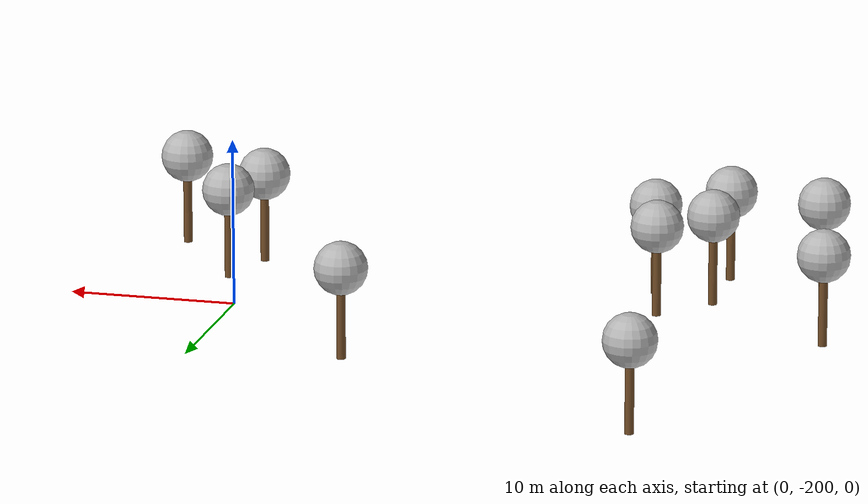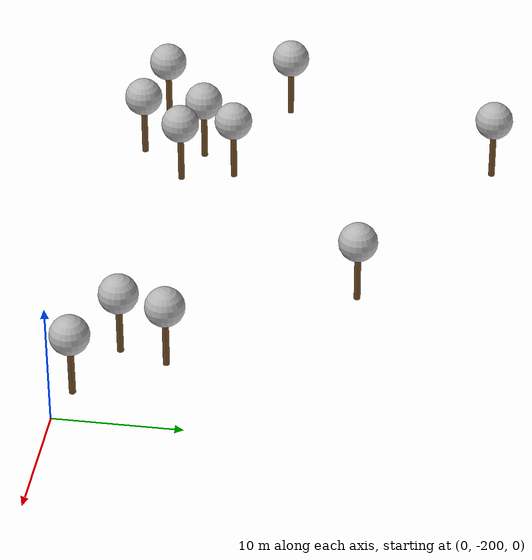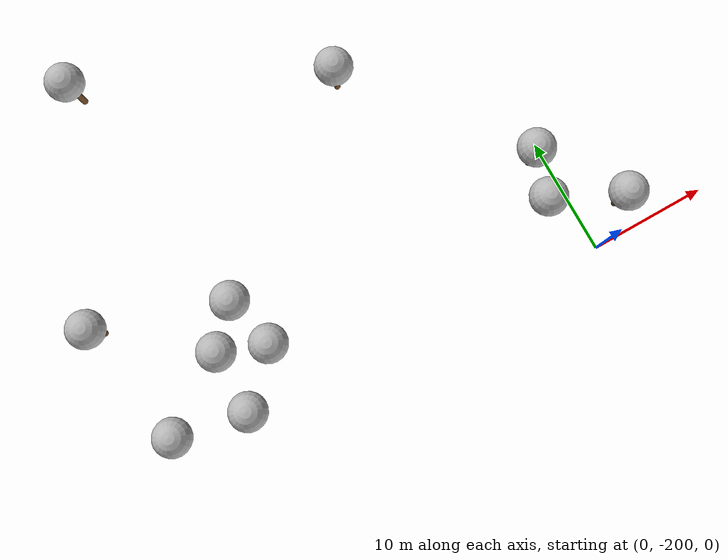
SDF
<sdf version="1.7">
 <world name="default">
  <model name="tree_simple_0_clone_1_clone">
   <static>1</static>
   <link name="link">
    <pose>0 0 0.1 0 -0 0</pose>
    <inertial>
     <mass>666</mass>
     <inertia>
      <ixx>0.0861167</ixx>
      <ixy>0</ixy>
      <ixz>0</ixz>
      <iyy>0.0861167</iyy>
      <iyz>0</iyz>
      <izz>0.0861167</izz>
     </inertia>
    </inertial>
    <collision name="collision_trunk">
     <pose>0 0 2 0 -0 0</pose>
     <geometry><cylinder><radius>0.25</radius><length>4</length></cylinder></geometry>
     <surface>
      <contact>
       <poissons_ratio>0.347</poissons_ratio>
       <elastic_modulus>8.8e+09</elastic_modulus>
       <ode><kp>100000</kp><kd>100</kd><max_vel>100</max_vel><min_depth>0.001</min_depth></ode>
      </contact>
      <friction>
       <torsional>
        <coefficient>1</coefficient>
        <use_patch_radius>0</use_patch_radius>
        <surface_radius>0.01</surface_radius>
       </torsional>
      </friction>
     </surface>
    </collision>
    <collision name="collision_treetop">
     <pose>0 0 5.2 0 -0 0</pose>
     <geometry><sphere><radius>1.5</radius></sphere></geometry>
     <surface>
      <contact>
       <poissons_ratio>0.347</poissons_ratio>
       <elastic_modulus>8.8e+09</elastic_modulus>
       <ode><kp>100000</kp><kd>100</kd><max_vel>100</max_vel><min_depth>0.001</min_depth></ode>
      </contact>
      <friction>
       <torsional>
        <coefficient>1</coefficient>
        <use_patch_radius>0</use_patch_radius>
        <surface_radius>0.01</surface_radius>
       </torsional>
      </friction>
     </surface>
    </collision>
    <visual name="trunk">
     <pose>0 0 2 0 -0 0</pose>
     <geometry><cylinder><radius>0.25</radius><length>4</length></cylinder></geometry>
     <material>
      <script>
       <uri>model://tree_simple/scripts</uri>
       <uri>model://tree_simple/materials/textures</uri>
       <name>TreeSimple/Trunk</name>
      </script>
     </material>
    </visual>
    <visual name="treetop">
     <pose>0 0 5.2 0 -0 0</pose>
     <geometry><sphere><radius>1.5</radius></sphere></geometry>
     <material>
      <script>
       <uri>model://tree_simple/scripts</uri>
       <uri>model://tree_simple/materials/textures</uri>
       <name>TreeSimple/Treetop</name>
      </script>
     </material>
    </visual>
   </link>
   <pose>-12.3952 -178.664 4.14033 0 -0 0</pose>
  </model>
  <model name="tree_simple_0_clone_1_clone_0">
   <static>1</static>
   <link name="link">
    <pose>0 0 0.1 0 -0 0</pose>
    <inertial>
     <mass>666</mass>
     <inertia>
      <ixx>0.0861167</ixx>
      <ixy>0</ixy>
      <ixz>0</ixz>
      <iyy>0.0861167</iyy>
      <iyz>0</iyz>
      <izz>0.0861167</izz>
     </inertia>
    </inertial>
    <collision name="collision_trunk">
     <pose>0 0 2 0 -0 0</pose>
     <geometry><cylinder><radius>0.25</radius><length>4</length></cylinder></geometry>
     <surface>
      <contact>
       <poissons_ratio>0.347</poissons_ratio>
       <elastic_modulus>8.8e+09</elastic_modulus>
       <ode><kp>100000</kp><kd>100</kd><max_vel>100</max_vel><min_depth>0.001</min_depth></ode>
      </contact>
      <friction>
       <torsional>
        <coefficient>1</coefficient>
        <use_patch_radius>0</use_patch_radius>
        <surface_radius>0.01</surface_radius>
       </torsional>
      </friction>
     </surface>
    </collision>
    <collision name="collision_treetop">
     <pose>0 0 5.2 0 -0 0</pose>
     <geometry><sphere><radius>1.5</radius></sphere></geometry>
     <surface>
      <contact>
       <poissons_ratio>0.347</poissons_ratio>
       <elastic_modulus>8.8e+09</elastic_modulus>
       <ode><kp>100000</kp><kd>100</kd><max_vel>100</max_vel><min_depth>0.001</min_depth></ode>
      </contact>
      <friction>
       <torsional>
        <coefficient>1</coefficient>
        <use_patch_radius>0</use_patch_radius>
        <surface_radius>0.01</surface_radius>
       </torsional>
      </friction>
     </surface>
    </collision>
    <visual name="trunk">
     <pose>0 0 2 0 -0 0</pose>
     <geometry><cylinder><radius>0.25</radius><length>4</length></cylinder></geometry>
     <material>
      <script>
       <uri>model://tree_simple/scripts</uri>
       <uri>model://tree_simple/materials/textures</uri>
       <name>TreeSimple/Trunk</name>
      </script>
     </material>
    </visual>
    <visual name="treetop">
     <pose>0 0 5.2 0 -0 0</pose>
     <geometry><sphere><radius>1.5</radius></sphere></geometry>
     <material>
      <script>
       <uri>model://tree_simple/scripts</uri>
       <uri>model://tree_simple/materials/textures</uri>
       <name>TreeSimple/Treetop</name>
      </script>
     </material>
    </visual>
   </link>
   <pose>-30.1583 -193.288 4.24809 0 -0 0</pose>
  </model>
  <model name="tree_simple_0_clone_1_clone_clone">
   <static>1</static>
   <link name="link">
    <pose>0 0 0.1 0 -0 0</pose>
    <inertial>
     <mass>666</mass>
     <inertia>
      <ixx>0.0861167</ixx>
      <ixy>0</ixy>
      <ixz>0</ixz>
      <iyy>0.0861167</iyy>
      <iyz>0</iyz>
      <izz>0.0861167</izz>
     </inertia>
    </inertial>
    <collision name="collision_trunk">
     <pose>0 0 2 0 -0 0</pose>
     <geometry><cylinder><radius>0.25</radius><length>4</length></cylinder></geometry>
     <surface>
      <contact>
       <poissons_ratio>0.347</poissons_ratio>
       <elastic_modulus>8.8e+09</elastic_modulus>
       <ode><kp>100000</kp><kd>100</kd><max_vel>100</max_vel><min_depth>0.001</min_depth></ode>
      </contact>
      <friction>
       <torsional>
        <coefficient>1</coefficient>
        <use_patch_radius>0</use_patch_radius>
        <surface_radius>0.01</surface_radius>
       </torsional>
      </friction>
     </surface>
    </collision>
    <collision name="collision_treetop">
     <pose>0 0 5.2 0 -0 0</pose>
     <geometry><sphere><radius>1.5</radius></sphere></geometry>
     <surface>
      <contact>
       <poissons_ratio>0.347</poissons_ratio>
       <elastic_modulus>8.8e+09</elastic_modulus>
       <ode><kp>100000</kp><kd>100</kd><max_vel>100</max_vel><min_depth>0.001</min_depth></ode>
      </contact>
      <friction>
       <torsional>
        <coefficient>1</coefficient>
        <use_patch_radius>0</use_patch_radius>
        <surface_radius>0.01</surface_radius>
       </torsional>
      </friction>
     </surface>
    </collision>
    <visual name="trunk">
     <pose>0 0 2 0 -0 0</pose>
     <geometry><cylinder><radius>0.25</radius><length>4</length></cylinder></geometry>
     <material>
      <script>
       <uri>model://tree_simple/scripts</uri>
       <uri>model://tree_simple/materials/textures</uri>
       <name>TreeSimple/Trunk</name>
      </script>
     </material>
    </visual>
    <visual name="treetop">
     <pose>0 0 5.2 0 -0 0</pose>
     <geometry><sphere><radius>1.5</radius></sphere></geometry>
     <material>
      <script>
       <uri>model://tree_simple/scripts</uri>
       <uri>model://tree_simple/materials/textures</uri>
       <name>TreeSimple/Treetop</name>
      </script>
     </material>
    </visual>
   </link>
   <pose>-30.6534 -169.847 4.14034 0 -0 0</pose>
  </model>
  <model name="tree_simple_0_clone_1_clone_0_clone">
   <static>1</static>
   <link name="link">
    <pose>0 0 0.1 0 -0 0</pose>
    <inertial>
     <mass>666</mass>
     <inertia>
      <ixx>0.0861167</ixx>
      <ixy>0</ixy>
      <ixz>0</ixz>
      <iyy>0.0861167</iyy>
      <iyz>0</iyz>
      <izz>0.0861167</izz>
     </inertia>
    </inertial>
    <collision name="collision_trunk">
     <pose>0 0 2 0 -0 0</pose>
     <geometry><cylinder><radius>0.25</radius><length>4</length></cylinder></geometry>
     <surface>
      <contact>
       <poissons_ratio>0.347</poissons_ratio>
       <elastic_modulus>8.8e+09</elastic_modulus>
       <ode><kp>100000</kp><kd>100</kd><max_vel>100</max_vel><min_depth>0.001</min_depth></ode>
      </contact>
      <friction>
       <torsional>
        <coefficient>1</coefficient>
        <use_patch_radius>0</use_patch_radius>
        <surface_radius>0.01</surface_radius>
       </torsional>
      </friction>
     </surface>
    </collision>
    <collision name="collision_treetop">
     <pose>0 0 5.2 0 -0 0</pose>
     <geometry><sphere><radius>1.5</radius></sphere></geometry>
     <surface>
      <contact>
       <poissons_ratio>0.347</poissons_ratio>
       <elastic_modulus>8.8e+09</elastic_modulus>
       <ode><kp>100000</kp><kd>100</kd><max_vel>100</max_vel><min_depth>0.001</min_depth></ode>
      </contact>
      <friction>
       <torsional>
        <coefficient>1</coefficient>
        <use_patch_radius>0</use_patch_radius>
        <surface_radius>0.01</surface_radius>
       </torsional>
      </friction>
     </surface>
    </collision>
    <visual name="trunk">
     <pose>0 0 2 0 -0 0</pose>
     <geometry><cylinder><radius>0.25</radius><length>4</length></cylinder></geometry>
     <material>
      <script>
       <uri>model://tree_simple/scripts</uri>
       <uri>model://tree_simple/materials/textures</uri>
       <name>TreeSimple/Trunk</name>
      </script>
     </material>
    </visual>
    <visual name="treetop">
     <pose>0 0 5.2 0 -0 0</pose>
     <geometry><sphere><radius>1.5</radius></sphere></geometry>
     <material>
      <script>
       <uri>model://tree_simple/scripts</uri>
       <uri>model://tree_simple/materials/textures</uri>
       <name>TreeSimple/Treetop</name>
      </script>
     </material>
    </visual>
   </link>
   <pose>-37.6725 -187.212 4.24809 0 -0 0</pose>
  </model>
  <model name="tree_simple_0_clone_1_clone_0_clone_1">
   <static>1</static>
   <link name="link">
    <pose>0 0 0.1 0 -0 0</pose>
    <inertial>
     <mass>666</mass>
     <inertia>
      <ixx>0.0861167</ixx>
      <ixy>0</ixy>
      <ixz>0</ixz>
      <iyy>0.0861167</iyy>
      <iyz>0</iyz>
      <izz>0.0861167</izz>
     </inertia>
    </inertial>
    <collision name="collision_trunk">
     <pose>0 0 2 0 -0 0</pose>
     <geometry><cylinder><radius>0.25</radius><length>4</length></cylinder></geometry>
     <surface>
      <contact>
       <poissons_ratio>0.347</poissons_ratio>
       <elastic_modulus>8.8e+09</elastic_modulus>
       <ode><kp>100000</kp><kd>100</kd><max_vel>100</max_vel><min_depth>0.001</min_depth></ode>
      </contact>
      <friction>
       <torsional>
        <coefficient>1</coefficient>
        <use_patch_radius>0</use_patch_radius>
        <surface_radius>0.01</surface_radius>
       </torsional>
      </friction>
     </surface>
    </collision>
    <collision name="collision_treetop">
     <pose>0 0 5.2 0 -0 0</pose>
     <geometry><sphere><radius>1.5</radius></sphere></geometry>
     <surface>
      <contact>
       <poissons_ratio>0.347</poissons_ratio>
       <elastic_modulus>8.8e+09</elastic_modulus>
       <ode><kp>100000</kp><kd>100</kd><max_vel>100</max_vel><min_depth>0.001</min_depth></ode>
      </contact>
      <friction>
       <torsional>
        <coefficient>1</coefficient>
        <use_patch_radius>0</use_patch_radius>
        <surface_radius>0.01</surface_radius>
       </torsional>
      </friction>
     </surface>
    </collision>
    <visual name="trunk">
     <pose>0 0 2 0 -0 0</pose>
     <geometry><cylinder><radius>0.25</radius><length>4</length></cylinder></geometry>
     <material>
      <script>
       <uri>model://tree_simple/scripts</uri>
       <uri>model://tree_simple/materials/textures</uri>
       <name>TreeSimple/Trunk</name>
      </script>
     </material>
    </visual>
    <visual name="treetop">
     <pose>0 0 5.2 0 -0 0</pose>
     <geometry><sphere><radius>1.5</radius></sphere></geometry>
     <material>
      <script>
       <uri>model://tree_simple/scripts</uri>
       <uri>model://tree_simple/materials/textures</uri>
       <name>TreeSimple/Treetop</name>
      </script>
     </material>
    </visual>
   </link>
   <pose>-35.7528 -197.175 4.24809 0 -0 0</pose>
  </model>
  <model name="tree_simple_0_clone_1_clone_0_clone_2">
   <static>1</static>
   <link name="link">
    <pose>0 0 0.1 0 -0 0</pose>
    <inertial>
     <mass>666</mass>
     <inertia>
      <ixx>0.0861167</ixx>
      <ixy>0</ixy>
      <ixz>0</ixz>
      <iyy>0.0861167</iyy>
      <iyz>0</iyz>
      <izz>0.0861167</izz>
     </inertia>
    </inertial>
    <collision name="collision_trunk">
     <pose>0 0 2 0 -0 0</pose>
     <geometry><cylinder><radius>0.25</radius><length>4</length></cylinder></geometry>
     <surface>
      <contact>
       <poissons_ratio>0.347</poissons_ratio>
       <elastic_modulus>8.8e+09</elastic_modulus>
       <ode><kp>100000</kp><kd>100</kd><max_vel>100</max_vel><min_depth>0.001</min_depth></ode>
      </contact>
      <friction>
       <torsional>
        <coefficient>1</coefficient>
        <use_patch_radius>0</use_patch_radius>
        <surface_radius>0.01</surface_radius>
       </torsional>
      </friction>
     </surface>
    </collision>
    <collision name="collision_treetop">
     <pose>0 0 5.2 0 -0 0</pose>
     <geometry><sphere><radius>1.5</radius></sphere></geometry>
     <surface>
      <contact>
       <poissons_ratio>0.347</poissons_ratio>
       <elastic_modulus>8.8e+09</elastic_modulus>
       <ode><kp>100000</kp><kd>100</kd><max_vel>100</max_vel><min_depth>0.001</min_depth></ode>
      </contact>
      <friction>
       <torsional>
        <coefficient>1</coefficient>
        <use_patch_radius>0</use_patch_radius>
        <surface_radius>0.01</surface_radius>
       </torsional>
      </friction>
     </surface>
    </collision>
    <visual name="trunk">
     <pose>0 0 2 0 -0 0</pose>
     <geometry><cylinder><radius>0.25</radius><length>4</length></cylinder></geometry>
     <material>
      <script>
       <uri>model://tree_simple/scripts</uri>
       <uri>model://tree_simple/materials/textures</uri>
       <name>TreeSimple/Trunk</name>
      </script>
     </material>
    </visual>
    <visual name="treetop">
     <pose>0 0 5.2 0 -0 0</pose>
     <geometry><sphere><radius>1.5</radius></sphere></geometry>
     <material>
      <script>
       <uri>model://tree_simple/scripts</uri>
       <uri>model://tree_simple/materials/textures</uri>
       <name>TreeSimple/Treetop</name>
      </script>
     </material>
    </visual>
   </link>
   <pose>-30.1563 -198.213 4.24809 0 -0 0</pose>
  </model>
  <model name="tree_simple_0_clone_1_clone_0_clone_7">
   <static>1</static>
   <link name="link">
    <pose>0 0 0.1 0 -0 0</pose>
    <inertial>
     <mass>666</mass>
     <inertia>
      <ixx>0.0861167</ixx>
      <ixy>0</ixy>
      <ixz>0</ixz>
      <iyy>0.0861167</iyy>
      <iyz>0</iyz>
      <izz>0.0861167</izz>
     </inertia>
    </inertial>
    <collision name="collision_trunk">
     <pose>0 0 2 0 -0 0</pose>
     <geometry><cylinder><radius>0.25</radius><length>4</length></cylinder></geometry>
     <surface>
      <contact>
       <poissons_ratio>0.347</poissons_ratio>
       <elastic_modulus>8.8e+09</elastic_modulus>
       <ode><kp>100000</kp><kd>100</kd><max_vel>100</max_vel><min_depth>0.001</min_depth></ode>
      </contact>
      <friction>
       <torsional>
        <coefficient>1</coefficient>
        <use_patch_radius>0</use_patch_radius>
        <surface_radius>0.01</surface_radius>
       </torsional>
      </friction>
     </surface>
    </collision>
    <collision name="collision_treetop">
     <pose>0 0 5.2 0 -0 0</pose>
     <geometry><sphere><radius>1.5</radius></sphere></geometry>
     <surface>
      <contact>
       <poissons_ratio>0.347</poissons_ratio>
       <elastic_modulus>8.8e+09</elastic_modulus>
       <ode><kp>100000</kp><kd>100</kd><max_vel>100</max_vel><min_depth>0.001</min_depth></ode>
      </contact>
      <friction>
       <torsional>
        <coefficient>1</coefficient>
        <use_patch_radius>0</use_patch_radius>
        <surface_radius>0.01</surface_radius>
       </torsional>
      </friction>
     </surface>
    </collision>
    <visual name="trunk">
     <pose>0 0 2 0 -0 0</pose>
     <geometry><cylinder><radius>0.25</radius><length>4</length></cylinder></geometry>
     <material>
      <script>
       <uri>model://tree_simple/scripts</uri>
       <uri>model://tree_simple/materials/textures</uri>
       <name>TreeSimple/Trunk</name>
      </script>
     </material>
    </visual>
    <visual name="treetop">
     <pose>0 0 5.2 0 -0 0</pose>
     <geometry><sphere><radius>1.5</radius></sphere></geometry>
     <material>
      <script>
       <uri>model://tree_simple/scripts</uri>
       <uri>model://tree_simple/materials/textures</uri>
       <name>TreeSimple/Treetop</name>
      </script>
     </material>
    </visual>
   </link>
   <pose>-26.5525 -194.602 4.24809 0 -0 0</pose>
  </model>
  <model name="tree_simple_0_clone_1_clone_0_clone_8">
   <static>1</static>
   <link name="link">
    <pose>0 0 0.1 0 -0 0</pose>
    <inertial>
     <mass>666</mass>
     <inertia>
      <ixx>0.0861167</ixx>
      <ixy>0</ixy>
      <ixz>0</ixz>
      <iyy>0.0861167</iyy>
      <iyz>0</iyz>
      <izz>0.0861167</izz>
     </inertia>
    </inertial>
    <collision name="collision_trunk">
     <pose>0 0 2 0 -0 0</pose>
     <geometry><cylinder><radius>0.25</radius><length>4</length></cylinder></geometry>
     <surface>
      <contact>
       <poissons_ratio>0.347</poissons_ratio>
       <elastic_modulus>8.8e+09</elastic_modulus>
       <ode><kp>100000</kp><kd>100</kd><max_vel>100</max_vel><min_depth>0.001</min_depth></ode>
      </contact>
      <friction>
       <torsional>
        <coefficient>1</coefficient>
        <use_patch_radius>0</use_patch_radius>
        <surface_radius>0.01</surface_radius>
       </torsional>
      </friction>
     </surface>
    </collision>
    <collision name="collision_treetop">
     <pose>0 0 5.2 0 -0 0</pose>
     <geometry><sphere><radius>1.5</radius></sphere></geometry>
     <surface>
      <contact>
       <poissons_ratio>0.347</poissons_ratio>
       <elastic_modulus>8.8e+09</elastic_modulus>
       <ode><kp>100000</kp><kd>100</kd><max_vel>100</max_vel><min_depth>0.001</min_depth></ode>
      </contact>
      <friction>
       <torsional>
        <coefficient>1</coefficient>
        <use_patch_radius>0</use_patch_radius>
        <surface_radius>0.01</surface_radius>
       </torsional>
      </friction>
     </surface>
    </collision>
    <visual name="trunk">
     <pose>0 0 2 0 -0 0</pose>
     <geometry><cylinder><radius>0.25</radius><length>4</length></cylinder></geometry>
     <material>
      <script>
       <uri>model://tree_simple/scripts</uri>
       <uri>model://tree_simple/materials/textures</uri>
       <name>TreeSimple/Trunk</name>
      </script>
     </material>
    </visual>
    <visual name="treetop">
     <pose>0 0 5.2 0 -0 0</pose>
     <geometry><sphere><radius>1.5</radius></sphere></geometry>
     <material>
      <script>
       <uri>model://tree_simple/scripts</uri>
       <uri>model://tree_simple/materials/textures</uri>
       <name>TreeSimple/Treetop</name>
      </script>
     </material>
    </visual>
   </link>
   <pose>-27.5392 -190.464 4.24809 0 -0 0</pose>
  </model>
  <model name="tree_simple_0_clone_1_clone_0_clone_3_clone">
   <static>1</static>
   <link name="link">
    <pose>0 0 0.1 0 -0 0</pose>
    <inertial>
     <mass>666</mass>
     <inertia>
      <ixx>0.0861167</ixx>
      <ixy>0</ixy>
      <ixz>0</ixz>
      <iyy>0.0861167</iyy>
      <iyz>0</iyz>
      <izz>0.0861167</izz>
     </inertia>
    </inertial>
    <collision name="collision_trunk">
     <pose>0 0 2 0 -0 0</pose>
     <geometry><cylinder><radius>0.25</radius><length>4</length></cylinder></geometry>
     <surface>
      <contact>
       <poissons_ratio>0.347</poissons_ratio>
       <elastic_modulus>8.8e+09</elastic_modulus>
       <ode><kp>100000</kp><kd>100</kd><max_vel>100</max_vel><min_depth>0.001</min_depth></ode>
      </contact>
      <friction>
       <torsional>
        <coefficient>1</coefficient>
        <use_patch_radius>0</use_patch_radius>
        <surface_radius>0.01</surface_radius>
       </torsional>
      </friction>
     </surface>
    </collision>
    <collision name="collision_treetop">
     <pose>0 0 5.2 0 -0 0</pose>
     <geometry><sphere><radius>1.5</radius></sphere></geometry>
     <surface>
      <contact>
       <poissons_ratio>0.347</poissons_ratio>
       <elastic_modulus>8.8e+09</elastic_modulus>
       <ode><kp>100000</kp><kd>100</kd><max_vel>100</max_vel><min_depth>0.001</min_depth></ode>
      </contact>
      <friction>
       <torsional>
        <coefficient>1</coefficient>
        <use_patch_radius>0</use_patch_radius>
        <surface_radius>0.01</surface_radius>
       </torsional>
      </friction>
     </surface>
    </collision>
    <visual name="trunk">
     <pose>0 0 2 0 -0 0</pose>
     <geometry><cylinder><radius>0.25</radius><length>4</length></cylinder></geometry>
     <material>
      <script>
       <uri>model://tree_simple/scripts</uri>
       <uri>model://tree_simple/materials/textures</uri>
       <name>TreeSimple/Trunk</name>
      </script>
     </material>
    </visual>
    <visual name="treetop">
     <pose>0 0 5.2 0 -0 0</pose>
     <geometry><sphere><radius>1.5</radius></sphere></geometry>
     <material>
      <script>
       <uri>model://tree_simple/scripts</uri>
       <uri>model://tree_simple/materials/textures</uri>
       <name>TreeSimple/Treetop</name>
      </script>
     </material>
    </visual>
   </link>
   <pose>2.07581 -197.744 4.24809 0 -0 0</pose>
  </model>
  <model name="tree_simple_0_clone_1_clone_0_clone_3_clone_0">
   <static>1</static>
   <link name="link">
    <pose>0 0 0.1 0 -0 0</pose>
    <inertial>
     <mass>666</mass>
     <inertia>
      <ixx>0.0861167</ixx>
      <ixy>0</ixy>
      <ixz>0</ixz>
      <iyy>0.0861167</iyy>
      <iyz>0</iyz>
      <izz>0.0861167</izz>
     </inertia>
    </inertial>
    <collision name="collision_trunk">
     <pose>0 0 2 0 -0 0</pose>
     <geometry><cylinder><radius>0.25</radius><length>4</length></cylinder></geometry>
     <surface>
      <contact>
       <poissons_ratio>0.347</poissons_ratio>
       <elastic_modulus>8.8e+09</elastic_modulus>
       <ode><kp>100000</kp><kd>100</kd><max_vel>100</max_vel><min_depth>0.001</min_depth></ode>
      </contact>
      <friction>
       <torsional>
        <coefficient>1</coefficient>
        <use_patch_radius>0</use_patch_radius>
        <surface_radius>0.01</surface_radius>
       </torsional>
      </friction>
     </surface>
    </collision>
    <collision name="collision_treetop">
     <pose>0 0 5.2 0 -0 0</pose>
     <geometry><sphere><radius>1.5</radius></sphere></geometry>
     <surface>
      <contact>
       <poissons_ratio>0.347</poissons_ratio>
       <elastic_modulus>8.8e+09</elastic_modulus>
       <ode><kp>100000</kp><kd>100</kd><max_vel>100</max_vel><min_depth>0.001</min_depth></ode>
      </contact>
      <friction>
       <torsional>
        <coefficient>1</coefficient>
        <use_patch_radius>0</use_patch_radius>
        <surface_radius>0.01</surface_radius>
       </torsional>
      </friction>
     </surface>
    </collision>
    <visual name="trunk">
     <pose>0 0 2 0 -0 0</pose>
     <geometry><cylinder><radius>0.25</radius><length>4</length></cylinder></geometry>
     <material>
      <script>
       <uri>model://tree_simple/scripts</uri>
       <uri>model://tree_simple/materials/textures</uri>
       <name>TreeSimple/Trunk</name>
      </script>
     </material>
    </visual>
    <visual name="treetop">
     <pose>0 0 5.2 0 -0 0</pose>
     <geometry><sphere><radius>1.5</radius></sphere></geometry>
     <material>
      <script>
       <uri>model://tree_simple/scripts</uri>
       <uri>model://tree_simple/materials/textures</uri>
       <name>TreeSimple/Treetop</name>
      </script>
     </material>
    </visual>
   </link>
   <pose>-3.30604 -195.217 4.24809 0 -0 0</pose>
  </model>
  <model name="tree_simple_0_clone_1_clone_0_clone_3_clone_1">
   <static>1</static>
   <link name="link">
    <pose>0 0 0.1 0 -0 0</pose>
    <inertial>
     <mass>666</mass>
     <inertia>
      <ixx>0.0861167</ixx>
      <ixy>0</ixy>
      <ixz>0</ixz>
      <iyy>0.0861167</iyy>
      <iyz>0</iyz>
      <izz>0.0861167</izz>
     </inertia>
    </inertial>
    <collision name="collision_trunk">
     <pose>0 0 2 0 -0 0</pose>
     <geometry><cylinder><radius>0.25</radius><length>4</length></cylinder></geometry>
     <surface>
      <contact>
       <poissons_ratio>0.347</poissons_ratio>
       <elastic_modulus>8.8e+09</elastic_modulus>
       <ode><kp>100000</kp><kd>100</kd><max_vel>100</max_vel><min_depth>0.001</min_depth></ode>
      </contact>
      <friction>
       <torsional>
        <coefficient>1</coefficient>
        <use_patch_radius>0</use_patch_radius>
        <surface_radius>0.01</surface_radius>
       </torsional>
      </friction>
     </surface>
    </collision>
    <collision name="collision_treetop">
     <pose>0 0 5.2 0 -0 0</pose>
     <geometry><sphere><radius>1.5</radius></sphere></geometry>
     <surface>
      <contact>
       <poissons_ratio>0.347</poissons_ratio>
       <elastic_modulus>8.8e+09</elastic_modulus>
       <ode><kp>100000</kp><kd>100</kd><max_vel>100</max_vel><min_depth>0.001</min_depth></ode>
      </contact>
      <friction>
       <torsional>
        <coefficient>1</coefficient>
        <use_patch_radius>0</use_patch_radius>
        <surface_radius>0.01</surface_radius>
       </torsional>
      </friction>
     </surface>
    </collision>
    <visual name="trunk">
     <pose>0 0 2 0 -0 0</pose>
     <geometry><cylinder><radius>0.25</radius><length>4</length></cylinder></geometry>
     <material>
      <script>
       <uri>model://tree_simple/scripts</uri>
       <uri>model://tree_simple/materials/textures</uri>
       <name>TreeSimple/Trunk</name>
      </script>
     </material>
    </visual>
    <visual name="treetop">
     <pose>0 0 5.2 0 -0 0</pose>
     <geometry><sphere><radius>1.5</radius></sphere></geometry>
     <material>
      <script>
       <uri>model://tree_simple/scripts</uri>
       <uri>model://tree_simple/materials/textures</uri>
       <name>TreeSimple/Treetop</name>
      </script>
     </material>
    </visual>
   </link>
   <pose>-2.20969 -191.58 4.24809 0 -0 0</pose>
  </model>
 </world>
</sdf>
